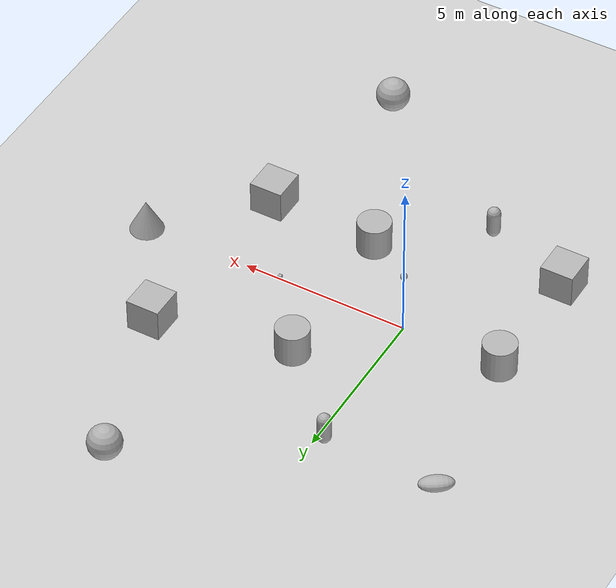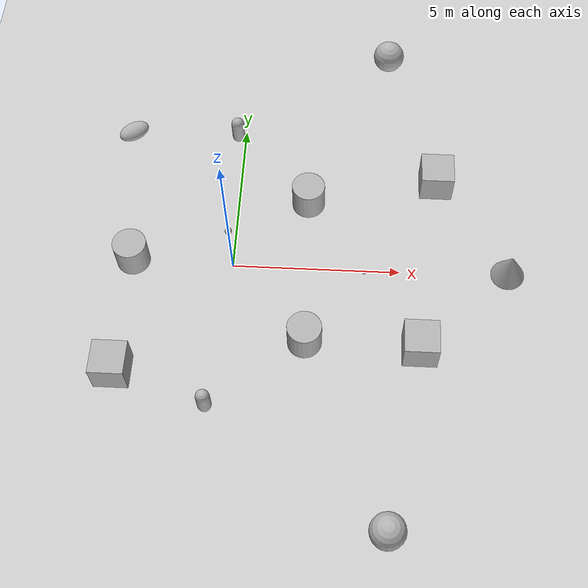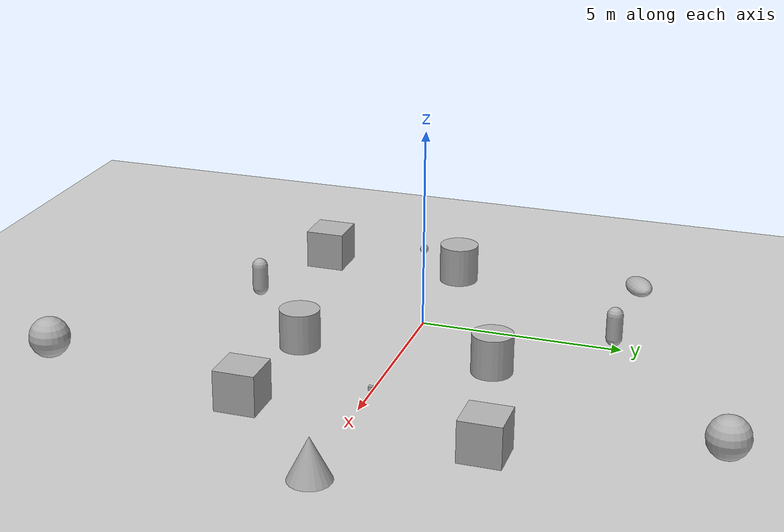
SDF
<sdf version='1.10'>
  <world name='sensors'>
    <physics name='1ms' type='ignored'>
      <max_step_size>0.001</max_step_size>
      <real_time_factor>1</real_time_factor>
      <real_time_update_rate>1000</real_time_update_rate>
    </physics>
    <plugin name='gz::sim::systems::Physics' filename='gz-sim-physics-system'/>
    <plugin name='gz::sim::systems::AirPressure' filename='gz-sim-air-pressure-system'/>
    <plugin name='gz::sim::systems::Altimeter' filename='gz-sim-altimeter-system'/>
    <plugin name='gz::sim::systems::Imu' filename='gz-sim-imu-system'/>
    <plugin name='gz::sim::systems::Magnetometer' filename='gz-sim-magnetometer-system'/>
    <plugin name='gz::sim::systems::ForceTorque' filename='gz-sim-forcetorque-system'/>
    <plugin name='gz::sim::systems::UserCommands' filename='gz-sim-user-commands-system'/>
    <plugin name='gz::sim::systems::SceneBroadcaster' filename='gz-sim-scene-broadcaster-system'/>
    <!-- Contact sensing. Without this system the robot's contact sensor is inert and collisions are undetectable, which is the central safety metric for the navigation trials. -->
    <plugin name='gz::sim::systems::Contact' filename='gz-sim-contact-system'/>
    <gravity>0 0 -9.8000000000000007</gravity>
    <magnetic_field>5.5644999999999998e-06 2.2875799999999999e-05 -4.2388400000000002e-05</magnetic_field>
    <atmosphere type='adiabatic'/>
    <scene>
      <ambient>0.400000006 0.400000006 0.400000006 1</ambient>
      <background>0.699999988 0.699999988 0.699999988 1</background>
      <shadows>true</shadows>
    </scene>
    <model name='ground_plane'>
      <static>true</static>
      <link name='link'>
        <collision name='collision'>
          <geometry>
            <plane>
              <normal>0 0 1</normal>
              <size>100 100</size>
            </plane>
          </geometry>
          <surface>
            <friction>
              <ode/>
            </friction>
            <bounce/>
            <contact/>
          </surface>
        </collision>
        <visual name='visual'>
          <geometry>
            <plane>
              <normal>0 0 1</normal>
              <size>100 100</size>
            </plane>
          </geometry>
          <material>
            <ambient>0.800000012 0.800000012 0.800000012 1</ambient>
            <diffuse>0.800000012 0.800000012 0.800000012 1</diffuse>
            <specular>0.800000012 0.800000012 0.800000012 1</specular>
          </material>
        </visual>
        <pose>0 0 0 0 0 0</pose>
        <inertial>
          <pose>0 0 0 0 0 0</pose>
          <mass>1</mass>
          <inertia>
            <ixx>1</ixx>
            <ixy>0</ixy>
            <ixz>0</ixz>
            <iyy>1</iyy>
            <iyz>0</iyz>
            <izz>1</izz>
          </inertia>
        </inertial>
        <enable_wind>false</enable_wind>
      </link>
      <pose>0 0 0 0 0 0</pose>
      <self_collide>false</self_collide>
    </model>
    <model name='sensors_box'>
      <pose>4 -6.9388939039072284e-18 -3.9740651946312822e-07 -1.0141932259619871e-17 9.7021241066914383e-18 3.1400000000000001</pose>
      <link name='link'>
        <pose>0.050000000000000003 0.050000000000000003 0.050000000000000003 0 0 0</pose>
        <inertial>
          <mass>0.10000000000000001</mass>
          <inertia>
            <ixx>0.00016666700000000001</ixx>
            <iyy>0.00016666700000000001</iyy>
            <izz>0.00016666700000000001</izz>
            <ixy>0</ixy>
            <ixz>0</ixz>
            <iyz>0</iyz>
          </inertia>
          <pose>0 0 0 0 0 0</pose>
        </inertial>
        <collision name='collision'>
          <geometry>
            <box>
              <size>0.10000000000000001 0.10000000000000001 0.10000000000000001</size>
            </box>
          </geometry>
          <surface>
            <friction>
              <ode/>
            </friction>
            <bounce/>
            <contact/>
          </surface>
        </collision>
        <visual name='visual'>
          <geometry>
            <box>
              <size>0.10000000000000001 0.10000000000000001 0.10000000000000001</size>
            </box>
          </geometry>
        </visual>
        <sensor name='altimeter' type='altimeter'>
          <pose>0 0 0 0 0 0</pose>
          <topic>altimeter</topic>
          <update_rate>30</update_rate>
          <enable_metrics>true</enable_metrics>
          <altimeter>
            <vertical_position>
              <noise type='gaussian'>
                <mean>0.10000000000000001</mean>
                <stddev>0.20000000000000001</stddev>
                <bias_mean>0</bias_mean>
                <bias_stddev>0</bias_stddev>
                <dynamic_bias_stddev>0</dynamic_bias_stddev>
                <dynamic_bias_correlation_time>0</dynamic_bias_correlation_time>
                <precision>0</precision>
              </noise>
            </vertical_position>
            <vertical_velocity>
              <noise type='gaussian'>
                <mean>0.20000000000000001</mean>
                <stddev>0.10000000000000001</stddev>
                <bias_mean>0</bias_mean>
                <bias_stddev>0</bias_stddev>
                <dynamic_bias_stddev>0</dynamic_bias_stddev>
                <dynamic_bias_correlation_time>0</dynamic_bias_correlation_time>
                <precision>0</precision>
              </noise>
            </vertical_velocity>
          </altimeter>
        </sensor>
        <sensor name='air_pressure' type='air_pressure'>
          <pose>0 0 0 0 0 0</pose>
          <topic>air_pressure</topic>
          <update_rate>30</update_rate>
          <enable_metrics>true</enable_metrics>
          <air_pressure>
            <reference_altitude>123</reference_altitude>
            <pressure>
              <noise type='gaussian'>
                <mean>0.20000000000000001</mean>
                <stddev>0.10000000000000001</stddev>
                <bias_mean>0</bias_mean>
                <bias_stddev>0</bias_stddev>
                <dynamic_bias_stddev>0</dynamic_bias_stddev>
                <dynamic_bias_correlation_time>0</dynamic_bias_correlation_time>
                <precision>0</precision>
              </noise>
            </pressure>
          </air_pressure>
        </sensor>
        <sensor name='air_speed' type='air_speed'>
          <pose>0 0 0 0 0 0</pose>
          <topic>air_pressure</topic>
          <update_rate>30</update_rate>
          <enable_metrics>true</enable_metrics>
          <air_speed>
            <pressure>
              <noise type='gaussian'>
                <mean>0.20000000000000001</mean>
                <stddev>0.10000000000000001</stddev>
                <bias_mean>0</bias_mean>
                <bias_stddev>0</bias_stddev>
                <dynamic_bias_stddev>0</dynamic_bias_stddev>
                <dynamic_bias_correlation_time>0</dynamic_bias_correlation_time>
                <precision>0</precision>
              </noise>
            </pressure>
          </air_speed>
        </sensor>

        <sensor name='magnetometer' type='magnetometer'>
          <pose>0 0 0 0 0 0</pose>
          <topic>magnetometer</topic>
          <update_rate>100</update_rate>
          <enable_metrics>true</enable_metrics>
          <magnetometer>
            <x>
              <noise type='gaussian'>
                <mean>0</mean>
                <stddev>0.10000000000000001</stddev>
                <bias_mean>0</bias_mean>
                <bias_stddev>0</bias_stddev>
                <dynamic_bias_stddev>0</dynamic_bias_stddev>
                <dynamic_bias_correlation_time>0</dynamic_bias_correlation_time>
                <precision>0</precision>
              </noise>
            </x>
            <y>
              <noise type='gaussian'>
                <mean>0</mean>
                <stddev>0.10000000000000001</stddev>
                <bias_mean>0</bias_mean>
                <bias_stddev>0</bias_stddev>
                <dynamic_bias_stddev>0</dynamic_bias_stddev>
                <dynamic_bias_correlation_time>0</dynamic_bias_correlation_time>
                <precision>0</precision>
              </noise>
            </y>
            <z>
              <noise type='gaussian'>
                <mean>0</mean>
                <stddev>0.10000000000000001</stddev>
                <bias_mean>0</bias_mean>
                <bias_stddev>0</bias_stddev>
                <dynamic_bias_stddev>0</dynamic_bias_stddev>
                <dynamic_bias_correlation_time>0</dynamic_bias_correlation_time>
                <precision>0</precision>
              </noise>
            </z>
          </magnetometer>
        </sensor>
        <enable_wind>false</enable_wind>
      </link>
      <static>false</static>
      <self_collide>false</self_collide>
    </model>
    <model name='force_torque_demo'>
      <link name='base_plate'>
        <static>true</static>
        <pose>0 0 0 0 0 0</pose>
        <inertial>
          <pose>0 0 0 0 0 0</pose>
          <mass>1</mass>
          <inertia>
            <ixx>1</ixx>
            <ixy>0</ixy>
            <ixz>0</ixz>
            <iyy>1</iyy>
            <iyz>0</iyz>
            <izz>1</izz>
          </inertia>
        </inertial>
        <enable_wind>false</enable_wind>
      </link>
      <link name='link_1'>
        <pose>0 0 2 0 0 0</pose>
        <inertial>
          <inertia>
            <ixx>0.10000000000000001</ixx>
            <ixy>0</ixy>
            <ixz>0</ixz>
            <iyy>0.10000000000000001</iyy>
            <iyz>0</iyz>
            <izz>0.10000000000000001</izz>
          </inertia>
          <mass>10</mass>
          <pose>0 0 0 0 0 0</pose>
        </inertial>
        <visual name='visual_sphere'>
          <geometry>
            <sphere>
              <radius>0.10000000000000001</radius>
            </sphere>
          </geometry>
        </visual>
        <visual name='visual_cylinder'>
          <pose>0 0 -0.75 0 0 0</pose>
          <geometry>
            <cylinder>
              <radius>0.01</radius>
              <length>1.5</length>
            </cylinder>
          </geometry>
        </visual>
        <collision name='collision_sphere'>
          <geometry>
            <sphere>
              <radius>0.10000000000000001</radius>
            </sphere>
          </geometry>
          <surface>
            <friction>
              <ode/>
            </friction>
            <bounce/>
            <contact/>
          </surface>
        </collision>
        <enable_wind>false</enable_wind>
      </link>
      <joint name='joint_00' type='fixed'>
        <parent>world</parent>
        <child>base_plate</child>
        <pose>0 0 0 0 0 0</pose>
      </joint>
      <joint name='joint_01' type='revolute'>
        <parent>base_plate</parent>
        <child>link_1</child>
        <pose>0 0 -1.5 0 0 0</pose>
        <axis>
          <xyz>1 0 0</xyz>
          <limit>
            <lower>-1.5707899999999999</lower>
            <upper>1.5707899999999999</upper>
            <effort>inf</effort>
            <velocity>inf</velocity>
            <stiffness>100000000</stiffness>
            <dissipation>1</dissipation>
          </limit>
          <dynamics>
            <spring_reference>0</spring_reference>
            <spring_stiffness>0</spring_stiffness>
            <damping>0</damping>
            <friction>0</friction>
          </dynamics>
        </axis>
        <sensor name='force_torque' type='force_torque'>
          <pose>0 0 0 0 0 0</pose>
          <topic>__default__</topic>
          <update_rate>10</update_rate>
          <enable_metrics>false</enable_metrics>
          <force_torque>
            <frame>child</frame>
            <measure_direction>child_to_parent</measure_direction>
            <force>
              <x>
                <noise type='none'>
                  <mean>0</mean>
                  <stddev>0</stddev>
                  <bias_mean>0</bias_mean>
                  <bias_stddev>0</bias_stddev>
                  <dynamic_bias_stddev>0</dynamic_bias_stddev>
                  <dynamic_bias_correlation_time>0</dynamic_bias_correlation_time>
                  <precision>0</precision>
                </noise>
              </x>
              <y>
                <noise type='none'>
                  <mean>0</mean>
                  <stddev>0</stddev>
                  <bias_mean>0</bias_mean>
                  <bias_stddev>0</bias_stddev>
                  <dynamic_bias_stddev>0</dynamic_bias_stddev>
                  <dynamic_bias_correlation_time>0</dynamic_bias_correlation_time>
                  <precision>0</precision>
                </noise>
              </y>
              <z>
                <noise type='none'>
                  <mean>0</mean>
                  <stddev>0</stddev>
                  <bias_mean>0</bias_mean>
                  <bias_stddev>0</bias_stddev>
                  <dynamic_bias_stddev>0</dynamic_bias_stddev>
                  <dynamic_bias_correlation_time>0</dynamic_bias_correlation_time>
                  <precision>0</precision>
                </noise>
              </z>
            </force>
            <torque>
              <x>
                <noise type='none'>
                  <mean>0</mean>
                  <stddev>0</stddev>
                  <bias_mean>0</bias_mean>
                  <bias_stddev>0</bias_stddev>
                  <dynamic_bias_stddev>0</dynamic_bias_stddev>
                  <dynamic_bias_correlation_time>0</dynamic_bias_correlation_time>
                  <precision>0</precision>
                </noise>
              </x>
              <y>
                <noise type='none'>
                  <mean>0</mean>
                  <stddev>0</stddev>
                  <bias_mean>0</bias_mean>
                  <bias_stddev>0</bias_stddev>
                  <dynamic_bias_stddev>0</dynamic_bias_stddev>
                  <dynamic_bias_correlation_time>0</dynamic_bias_correlation_time>
                  <precision>0</precision>
                </noise>
              </y>
              <z>
                <noise type='none'>
                  <mean>0</mean>
                  <stddev>0</stddev>
                  <bias_mean>0</bias_mean>
                  <bias_stddev>0</bias_stddev>
                  <dynamic_bias_stddev>0</dynamic_bias_stddev>
                  <dynamic_bias_correlation_time>0</dynamic_bias_correlation_time>
                  <precision>0</precision>
                </noise>
              </z>
            </torque>
          </force_torque>
        </sensor>
      </joint>
      <pose>0 0 0 0 0 0</pose>
      <static>false</static>
      <self_collide>false</self_collide>
    </model>
    <model name='cone'>
      <pose>8.238456331391399 0.079367314469508968 0.49999999993296756 5.2551143870362852e-17 -7.7132841035684656e-10 -1.645667864148841e-22</pose>
      <link name='cone_link'>
        <inertial>
          <inertia>
            <ixx>0.074999999999999997</ixx>
            <ixy>0</ixy>
            <ixz>0</ixz>
            <iyy>0.074999999999999997</iyy>
            <iyz>0</iyz>
            <izz>0.074999999999999997</izz>
          </inertia>
          <mass>1</mass>
          <pose>0 0 0 0 0 0</pose>
        </inertial>
        <collision name='cone_collision'>
          <geometry>
            <cone>
              <radius>0.5</radius>
              <length>1</length>
            </cone>
          </geometry>
          <surface>
            <friction>
              <ode/>
            </friction>
            <bounce/>
            <contact/>
          </surface>
        </collision>
        <visual name='cone_visual'>
          <geometry>
            <cone>
              <radius>0.5</radius>
              <length>1</length>
            </cone>
          </geometry>
          <material>
            <ambient>0.300000012 0.300000012 0.300000012 1</ambient>
            <diffuse>0.699999988 0.699999988 0.699999988 1</diffuse>
            <specular>1 1 1 1</specular>
          </material>
        </visual>
        <pose>0 0 0 0 0 0</pose>
        <enable_wind>false</enable_wind>
      </link>
      <static>false</static>
      <self_collide>false</self_collide>
    </model>
    <model name='box'>
      <pose>6.107601953292864 3.2185407708465941 0.49999999990199806 6.2287739151293738e-22 9.3279666454713669e-22 -3.6315533669320137e-22</pose>
      <link name='box_link'>
        <inertial>
          <inertia>
            <ixx>0.16666</ixx>
            <ixy>0</ixy>
            <ixz>0</ixz>
            <iyy>0.16666</iyy>
            <iyz>0</iyz>
            <izz>0.16666</izz>
          </inertia>
          <mass>1</mass>
          <pose>0 0 0 0 0 0</pose>
        </inertial>
        <collision name='box_collision'>
          <geometry>
            <box>
              <size>1 1 1</size>
            </box>
          </geometry>
          <surface>
            <friction>
              <ode/>
            </friction>
            <bounce/>
            <contact/>
          </surface>
        </collision>
        <visual name='box_visual'>
          <geometry>
            <box>
              <size>1 1 1</size>
            </box>
          </geometry>
          <material>
            <ambient>0.300000012 0.300000012 0.300000012 1</ambient>
            <diffuse>0.699999988 0.699999988 0.699999988 1</diffuse>
            <specular>1 1 1 1</specular>
          </material>
        </visual>
        <pose>0 0 0 0 0 0</pose>
        <enable_wind>false</enable_wind>
      </link>
      <static>false</static>
      <self_collide>false</self_collide>
    </model>
    <model name='box_0'>
      <pose>5.5899210706943254 -2.5352607526373538 0.49999999990199806 6.2287739151293738e-22 9.3279666454713669e-22 -3.6315533669320137e-22</pose>
      <link name='box_link'>
        <inertial>
          <inertia>
            <ixx>0.16666</ixx>
            <ixy>0</ixy>
            <ixz>0</ixz>
            <iyy>0.16666</iyy>
            <iyz>0</iyz>
            <izz>0.16666</izz>
          </inertia>
          <mass>1</mass>
          <pose>0 0 0 0 0 0</pose>
        </inertial>
        <collision name='box_collision'>
          <geometry>
            <box>
              <size>1 1 1</size>
            </box>
          </geometry>
          <surface>
            <friction>
              <ode/>
            </friction>
            <bounce/>
            <contact/>
          </surface>
        </collision>
        <visual name='box_visual'>
          <geometry>
            <box>
              <size>1 1 1</size>
            </box>
          </geometry>
          <material>
            <ambient>0.300000012 0.300000012 0.300000012 1</ambient>
            <diffuse>0.699999988 0.699999988 0.699999988 1</diffuse>
            <specular>1 1 1 1</specular>
          </material>
        </visual>
        <pose>0 0 0 0 0 0</pose>
        <enable_wind>false</enable_wind>
      </link>
      <static>false</static>
      <self_collide>false</self_collide>
    </model>
    <model name='sphere'>
      <pose>4.5705496917633663 8.0832530965773124 0.499999999902001 0 0 0</pose>
      <link name='sphere_link'>
        <inertial>
          <inertia>
            <ixx>0.10000000000000001</ixx>
            <ixy>0</ixy>
            <ixz>0</ixz>
            <iyy>0.10000000000000001</iyy>
            <iyz>0</iyz>
            <izz>0.10000000000000001</izz>
          </inertia>
          <mass>1</mass>
          <pose>0 0 0 0 0 0</pose>
        </inertial>
        <collision name='sphere_collision'>
          <geometry>
            <sphere>
              <radius>0.5</radius>
            </sphere>
          </geometry>
          <surface>
            <friction>
              <ode/>
            </friction>
            <bounce/>
            <contact/>
          </surface>
        </collision>
        <visual name='sphere_visual'>
          <geometry>
            <sphere>
              <radius>0.5</radius>
            </sphere>
          </geometry>
          <material>
            <ambient>0.300000012 0.300000012 0.300000012 1</ambient>
            <diffuse>0.699999988 0.699999988 0.699999988 1</diffuse>
            <specular>1 1 1 1</specular>
          </material>
        </visual>
        <pose>0 0 0 0 0 0</pose>
        <enable_wind>false</enable_wind>
      </link>
      <static>false</static>
      <self_collide>false</self_collide>
    </model>
    <model name='sphere_0'>
      <pose>4.7158465609377309 -7.8774567348646709 0.499999999902001 0 0 0</pose>
      <link name='sphere_link'>
        <inertial>
          <inertia>
            <ixx>0.10000000000000001</ixx>
            <ixy>0</ixy>
            <ixz>0</ixz>
            <iyy>0.10000000000000001</iyy>
            <iyz>0</iyz>
            <izz>0.10000000000000001</izz>
          </inertia>
          <mass>1</mass>
          <pose>0 0 0 0 0 0</pose>
        </inertial>
        <collision name='sphere_collision'>
          <geometry>
            <sphere>
              <radius>0.5</radius>
            </sphere>
          </geometry>
          <surface>
            <friction>
              <ode/>
            </friction>
            <bounce/>
            <contact/>
          </surface>
        </collision>
        <visual name='sphere_visual'>
          <geometry>
            <sphere>
              <radius>0.5</radius>
            </sphere>
          </geometry>
          <material>
            <ambient>0.300000012 0.300000012 0.300000012 1</ambient>
            <diffuse>0.699999988 0.699999988 0.699999988 1</diffuse>
            <specular>1 1 1 1</specular>
          </material>
        </visual>
        <pose>0 0 0 0 0 0</pose>
        <enable_wind>false</enable_wind>
      </link>
      <static>false</static>
      <self_collide>false</self_collide>
    </model>
    <model name='cylinder'>
      <pose>2.155130738186612 2.334555217021109 0.49999942638036005 5.1282641539471948e-19 4.8361342116254636e-19 1.2735086335964919e-21</pose>
      <link name='cylinder_link'>
        <inertial>
          <inertia>
            <ixx>0.14580000000000001</ixx>
            <ixy>0</ixy>
            <ixz>0</ixz>
            <iyy>0.14580000000000001</iyy>
            <iyz>0</iyz>
            <izz>0.125</izz>
          </inertia>
          <mass>1</mass>
          <pose>0 0 0 0 0 0</pose>
        </inertial>
        <collision name='cylinder_collision'>
          <geometry>
            <cylinder>
              <radius>0.5</radius>
              <length>1</length>
            </cylinder>
          </geometry>
          <surface>
            <friction>
              <ode/>
            </friction>
            <bounce/>
            <contact/>
          </surface>
        </collision>
        <visual name='cylinder_visual'>
          <geometry>
            <cylinder>
              <radius>0.5</radius>
              <length>1</length>
            </cylinder>
          </geometry>
          <material>
            <ambient>0.300000012 0.300000012 0.300000012 1</ambient>
            <diffuse>0.699999988 0.699999988 0.699999988 1</diffuse>
            <specular>1 1 1 1</specular>
          </material>
        </visual>
        <pose>0 0 0 0 0 0</pose>
        <enable_wind>false</enable_wind>
      </link>
      <static>false</static>
      <self_collide>false</self_collide>
    </model>
    <model name='cylinder_0'>
      <pose>2.2787146094982855 -2.4293259357225683 0.49999942638036005 -9.4825740406905862e-20 -1.7052052216273815e-19 1.7541297409770733e-20</pose>
      <link name='cylinder_link'>
        <inertial>
          <inertia>
            <ixx>0.14580000000000001</ixx>
            <ixy>0</ixy>
            <ixz>0</ixz>
            <iyy>0.14580000000000001</iyy>
            <iyz>0</iyz>
            <izz>0.125</izz>
          </inertia>
          <mass>1</mass>
          <pose>0 0 0 0 0 0</pose>
        </inertial>
        <collision name='cylinder_collision'>
          <geometry>
            <cylinder>
              <radius>0.5</radius>
              <length>1</length>
            </cylinder>
          </geometry>
          <surface>
            <friction>
              <ode/>
            </friction>
            <bounce/>
            <contact/>
          </surface>
        </collision>
        <visual name='cylinder_visual'>
          <geometry>
            <cylinder>
              <radius>0.5</radius>
              <length>1</length>
            </cylinder>
          </geometry>
          <material>
            <ambient>0.300000012 0.300000012 0.300000012 1</ambient>
            <diffuse>0.699999988 0.699999988 0.699999988 1</diffuse>
            <specular>1 1 1 1</specular>
          </material>
        </visual>
        <pose>0 0 0 0 0 0</pose>
        <enable_wind>false</enable_wind>
      </link>
      <static>false</static>
      <self_collide>false</self_collide>
    </model>
    <model name='capsule'>
      <pose>-0.23405738439147328 4.7565573603461324 0.499999999902001 0 0 0</pose>
      <link name='capsule_link'>
        <inertial>
          <inertia>
            <ixx>0.074153999999999998</ixx>
            <ixy>0</ixy>
            <ixz>0</ixz>
            <iyy>0.074153999999999998</iyy>
            <iyz>0</iyz>
            <izz>0.018769000000000001</izz>
          </inertia>
          <mass>1</mass>
          <pose>0 0 0 0 0 0</pose>
        </inertial>
        <collision name='capsule_collision'>
          <geometry>
            <capsule>
              <radius>0.20000000000000001</radius>
              <length>0.59999999999999998</length>
            </capsule>
          </geometry>
          <surface>
            <friction>
              <ode/>
            </friction>
            <bounce/>
            <contact/>
          </surface>
        </collision>
        <visual name='capsule_visual'>
          <geometry>
            <capsule>
              <radius>0.20000000000000001</radius>
              <length>0.59999999999999998</length>
            </capsule>
          </geometry>
          <material>
            <ambient>0.300000012 0.300000012 0.300000012 1</ambient>
            <diffuse>0.699999988 0.699999988 0.699999988 1</diffuse>
            <specular>1 1 1 1</specular>
          </material>
        </visual>
        <pose>0 0 0 0 0 0</pose>
        <enable_wind>false</enable_wind>
      </link>
      <static>false</static>
      <self_collide>false</self_collide>
    </model>
    <model name='capsule_0'>
      <pose>-0.38210374710793005 -4.5554763176856987 0.499999999902001 0 0 0</pose>
      <link name='capsule_link'>
        <inertial>
          <inertia>
            <ixx>0.074153999999999998</ixx>
            <ixy>0</ixy>
            <ixz>0</ixz>
            <iyy>0.074153999999999998</iyy>
            <iyz>0</iyz>
            <izz>0.018769000000000001</izz>
          </inertia>
          <mass>1</mass>
          <pose>0 0 0 0 0 0</pose>
        </inertial>
        <collision name='capsule_collision'>
          <geometry>
            <capsule>
              <radius>0.20000000000000001</radius>
              <length>0.59999999999999998</length>
            </capsule>
          </geometry>
          <surface>
            <friction>
              <ode/>
            </friction>
            <bounce/>
            <contact/>
          </surface>
        </collision>
        <visual name='capsule_visual'>
          <geometry>
            <capsule>
              <radius>0.20000000000000001</radius>
              <length>0.59999999999999998</length>
            </capsule>
          </geometry>
          <material>
            <ambient>0.300000012 0.300000012 0.300000012 1</ambient>
            <diffuse>0.699999988 0.699999988 0.699999988 1</diffuse>
            <specular>1 1 1 1</specular>
          </material>
        </visual>
        <pose>0 0 0 0 0 0</pose>
        <enable_wind>false</enable_wind>
      </link>
      <static>false</static>
      <self_collide>false</self_collide>
    </model>
    <model name='cylinder_1'>
      <pose>-3.0230218482650582 0.060244672110553399 0.49999942638036005 1.2619188097957447e-19 1.5760396871817543e-21 -3.2910914492239665e-20</pose>
      <link name='cylinder_link'>
        <inertial>
          <inertia>
            <ixx>0.14580000000000001</ixx>
            <ixy>0</ixy>
            <ixz>0</ixz>
            <iyy>0.14580000000000001</iyy>
            <iyz>0</iyz>
            <izz>0.125</izz>
          </inertia>
          <mass>1</mass>
          <pose>0 0 0 0 0 0</pose>
        </inertial>
        <collision name='cylinder_collision'>
          <geometry>
            <cylinder>
              <radius>0.5</radius>
              <length>1</length>
            </cylinder>
          </geometry>
          <surface>
            <friction>
              <ode/>
            </friction>
            <bounce/>
            <contact/>
          </surface>
        </collision>
        <visual name='cylinder_visual'>
          <geometry>
            <cylinder>
              <radius>0.5</radius>
              <length>1</length>
            </cylinder>
          </geometry>
          <material>
            <ambient>0.300000012 0.300000012 0.300000012 1</ambient>
            <diffuse>0.699999988 0.699999988 0.699999988 1</diffuse>
            <specular>1 1 1 1</specular>
          </material>
        </visual>
        <pose>0 0 0 0 0 0</pose>
        <enable_wind>false</enable_wind>
      </link>
      <static>false</static>
      <self_collide>false</self_collide>
    </model>
    <model name='ellipsoid'>
      <pose>-3.6544063924618522 4.7690653526673001 0.18666847707515008 1.5707963023178175 -1.3774887467970665 -0.95750864399092195</pose>
      <link name='ellipsoid_link'>
        <inertial>
          <inertia>
            <ixx>0.068000000000000005</ixx>
            <ixy>0</ixy>
            <ixz>0</ixz>
            <iyy>0.058000000000000003</iyy>
            <iyz>0</iyz>
            <izz>0.025999999999999999</izz>
          </inertia>
          <mass>1</mass>
          <pose>0 0 0 0 0 0</pose>
        </inertial>
        <collision name='ellipsoid_collision'>
          <geometry>
            <ellipsoid>
              <radii>0.20000000000000001 0.29999999999999999 0.5</radii>
            </ellipsoid>
          </geometry>
          <surface>
            <friction>
              <ode/>
            </friction>
            <bounce/>
            <contact/>
          </surface>
        </collision>
        <visual name='ellipsoid_visual'>
          <geometry>
            <ellipsoid>
              <radii>0.20000000000000001 0.29999999999999999 0.5</radii>
            </ellipsoid>
          </geometry>
          <material>
            <ambient>0.300000012 0.300000012 0.300000012 1</ambient>
            <diffuse>0.699999988 0.699999988 0.699999988 1</diffuse>
            <specular>1 1 1 1</specular>
          </material>
        </visual>
        <pose>0 0 0 0 0 0</pose>
        <enable_wind>false</enable_wind>
      </link>
      <static>false</static>
      <self_collide>false</self_collide>
    </model>
    <model name='box_1'>
      <pose>-3.0997348214219227 -3.590517955105792 0.49999999990199806 6.2287739151293738e-22 9.3279666454713669e-22 -3.6315533669320137e-22</pose>
      <link name='box_link'>
        <inertial>
          <inertia>
            <ixx>0.16666</ixx>
            <ixy>0</ixy>
            <ixz>0</ixz>
            <iyy>0.16666</iyy>
            <iyz>0</iyz>
            <izz>0.16666</izz>
          </inertia>
          <mass>1</mass>
          <pose>0 0 0 0 0 0</pose>
        </inertial>
        <collision name='box_collision'>
          <geometry>
            <box>
              <size>1 1 1</size>
            </box>
          </geometry>
          <surface>
            <friction>
              <ode/>
            </friction>
            <bounce/>
            <contact/>
          </surface>
        </collision>
        <visual name='box_visual'>
          <geometry>
            <box>
              <size>1 1 1</size>
            </box>
          </geometry>
          <material>
            <ambient>0.300000012 0.300000012 0.300000012 1</ambient>
            <diffuse>0.699999988 0.699999988 0.699999988 1</diffuse>
            <specular>1 1 1 1</specular>
          </material>
        </visual>
        <pose>0 0 0 0 0 0</pose>
        <enable_wind>false</enable_wind>
      </link>
      <static>false</static>
      <self_collide>false</self_collide>
    </model>
    <light name='sun' type='directional'>
      <pose>0 0 10 0 0 0</pose>
      <cast_shadows>true</cast_shadows>
      <intensity>1</intensity>
      <direction>-0.5 0.10000000000000001 -0.90000000000000002</direction>
      <diffuse>0.800000012 0.800000012 0.800000012 1</diffuse>
      <specular>0.200000003 0.200000003 0.200000003 1</specular>
      <attenuation>
        <range>1000</range>
        <linear>0.01</linear>
        <constant>0.90000000000000002</constant>
        <quadratic>0.001</quadratic>
      </attenuation>
      <spot>
        <inner_angle>0</inner_angle>
        <outer_angle>0</outer_angle>
        <falloff>0</falloff>
      </spot>
    </light>
  </world>
</sdf>
